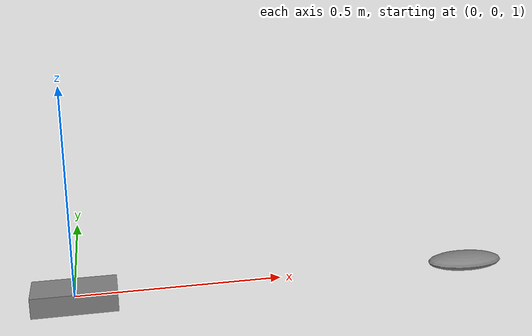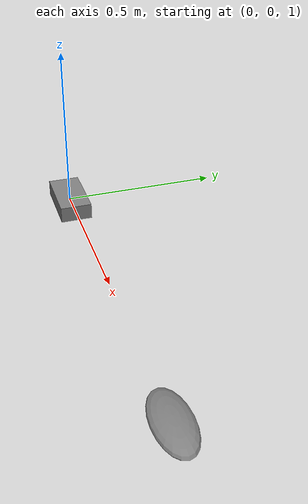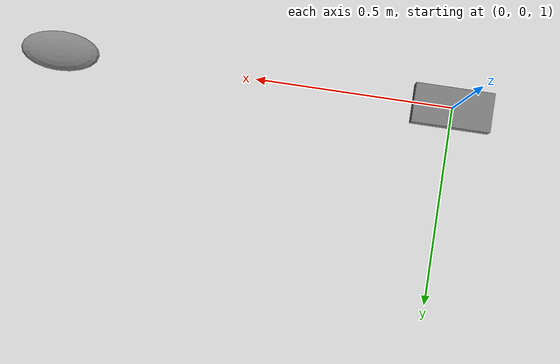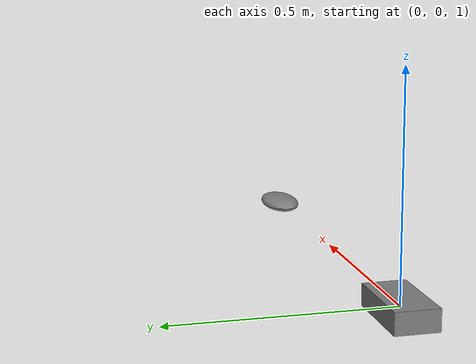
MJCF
<mujoco><option density="1.2" viscosity="0.001" integrator="implicit"/>
    <worldbody>
    <body name="box_body" pos="0 0 1"><freejoint/>
    <geom type="box" size="0.1 0.05 0.025" mass="1"/>
    </body>
    <body name="ell_body" pos="1 0 1"><freejoint/>
    <geom type="ellipsoid" size="0.1 0.05 0.02" mass="1"
          fluidshape="ellipsoid"/>
    </body></worldbody></mujoco>
